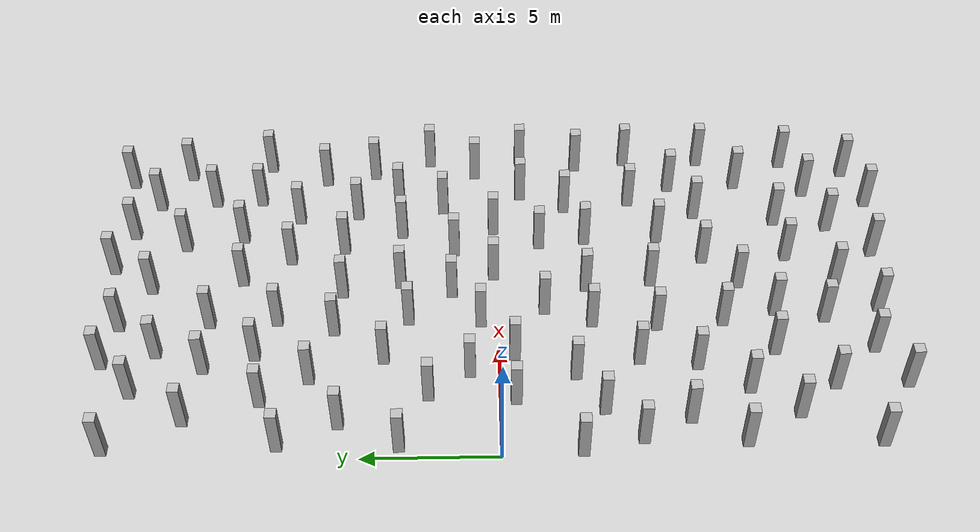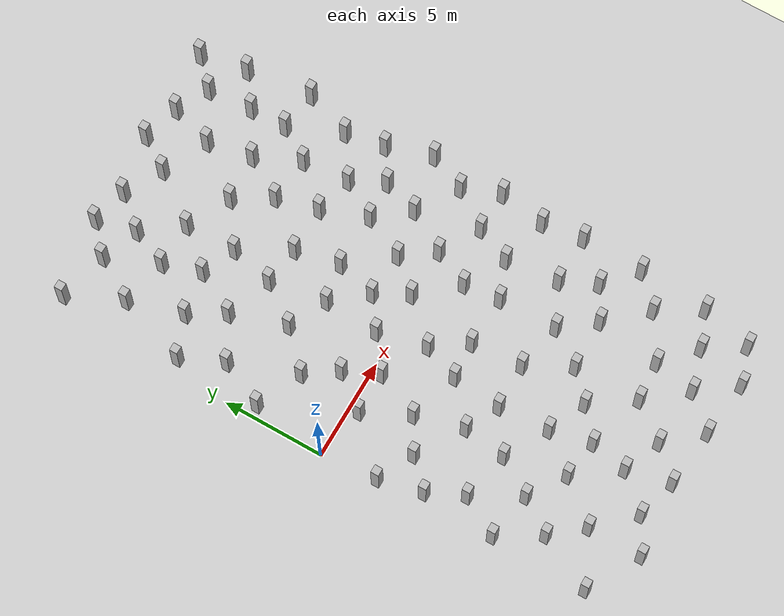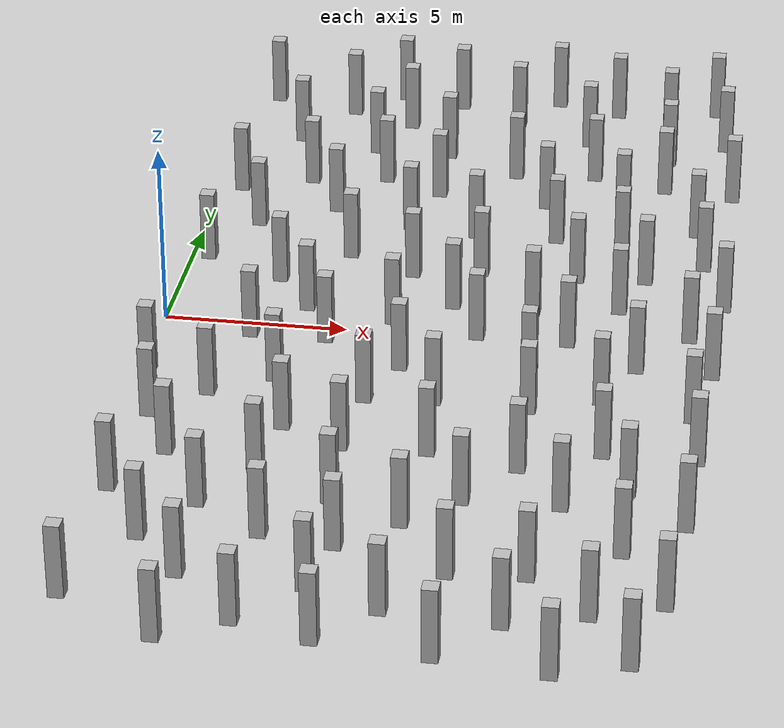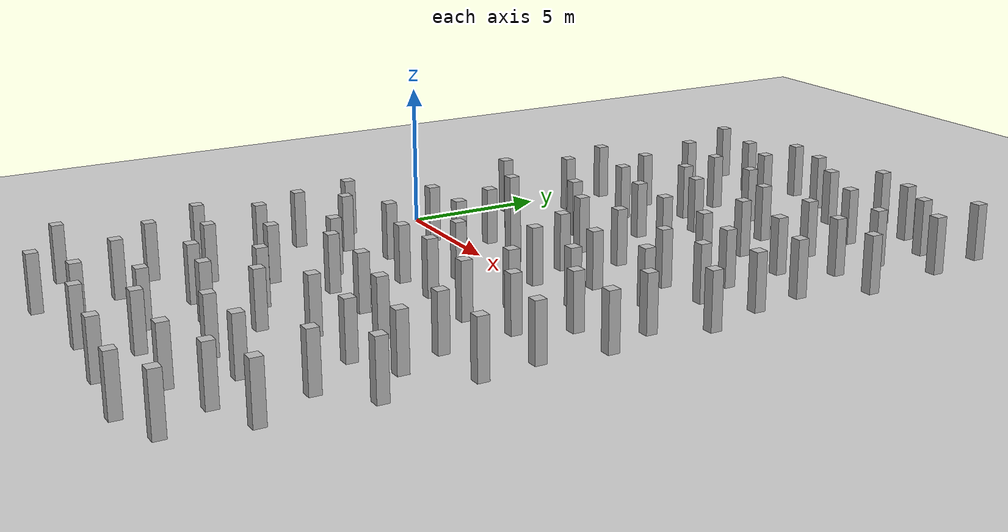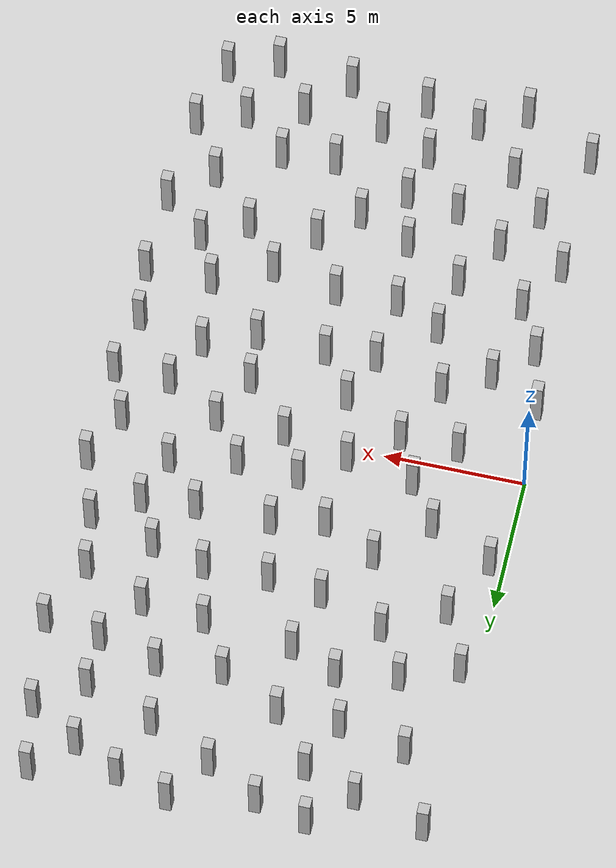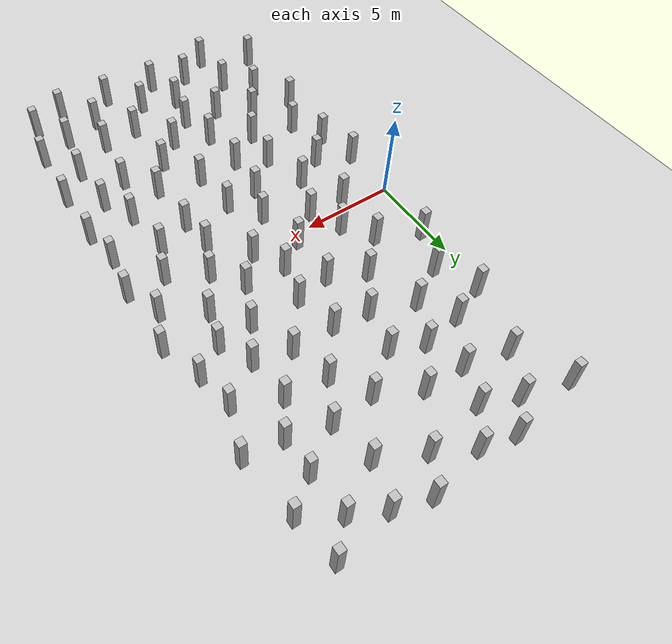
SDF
<sdf version="1.6">
 <world name="randomized_boxes_30m_200_min1_8_max2_5">
  <include><uri>model://sun</uri></include>
  <include><uri>model://ground_plane</uri></include>
  <model name="box_25">
   <static>true</static>
   <pose>0.470 3.601 1.000 0 0 0</pose>
   <link name="link">
    <visual name="visual"><geometry><box><size>0.4 0.4 2.0</size></box></geometry></visual>
    <collision name="collision"><geometry><box><size>0.4 0.4 2.0</size></box></geometry></collision>
   </link>
  </model>
  <model name="box_33">
   <static>true</static>
   <pose>1.731 11.325 1.000 0 0 0</pose>
   <link name="link">
    <visual name="visual"><geometry><box><size>0.4 0.4 2.0</size></box></geometry></visual>
    <collision name="collision"><geometry><box><size>0.4 0.4 2.0</size></box></geometry></collision>
   </link>
  </model>
  <model name="box_39">
   <static>true</static>
   <pose>1.485 5.790 1.000 0 0 0</pose>
   <link name="link">
    <visual name="visual"><geometry><box><size>0.4 0.4 2.0</size></box></geometry></visual>
    <collision name="collision"><geometry><box><size>0.4 0.4 2.0</size></box></geometry></collision>
   </link>
  </model>
  <model name="box_40">
   <static>true</static>
   <pose>0.565 7.878 1.000 0 0 0</pose>
   <link name="link">
    <visual name="visual"><geometry><box><size>0.4 0.4 2.0</size></box></geometry></visual>
    <collision name="collision"><geometry><box><size>0.4 0.4 2.0</size></box></geometry></collision>
   </link>
  </model>
  <model name="box_46">
   <static>true</static>
   <pose>2.522 8.651 1.000 0 0 0</pose>
   <link name="link">
    <visual name="visual"><geometry><box><size>0.4 0.4 2.0</size></box></geometry></visual>
    <collision name="collision"><geometry><box><size>0.4 0.4 2.0</size></box></geometry></collision>
   </link>
  </model>
  <model name="box_47">
   <static>true</static>
   <pose>0.513 13.977 1.000 0 0 0</pose>
   <link name="link">
    <visual name="visual"><geometry><box><size>0.4 0.4 2.0</size></box></geometry></visual>
    <collision name="collision"><geometry><box><size>0.4 0.4 2.0</size></box></geometry></collision>
   </link>
  </model>
  <model name="box_48">
   <static>true</static>
   <pose>2.705 2.603 1.000 0 0 0</pose>
   <link name="link">
    <visual name="visual"><geometry><box><size>0.4 0.4 2.0</size></box></geometry></visual>
    <collision name="collision"><geometry><box><size>0.4 0.4 2.0</size></box></geometry></collision>
   </link>
  </model>
  <model name="box_53">
   <static>true</static>
   <pose>4.412 4.264 1.000 0 0 0</pose>
   <link name="link">
    <visual name="visual"><geometry><box><size>0.4 0.4 2.0</size></box></geometry></visual>
    <collision name="collision"><geometry><box><size>0.4 0.4 2.0</size></box></geometry></collision>
   </link>
  </model>
  <model name="box_58">
   <static>true</static>
   <pose>2.987 13.372 1.000 0 0 0</pose>
   <link name="link">
    <visual name="visual"><geometry><box><size>0.4 0.4 2.0</size></box></geometry></visual>
    <collision name="collision"><geometry><box><size>0.4 0.4 2.0</size></box></geometry></collision>
   </link>
  </model>
  <model name="box_60">
   <static>true</static>
   <pose>3.736 1.093 1.000 0 0 0</pose>
   <link name="link">
    <visual name="visual"><geometry><box><size>0.4 0.4 2.0</size></box></geometry></visual>
    <collision name="collision"><geometry><box><size>0.4 0.4 2.0</size></box></geometry></collision>
   </link>
  </model>
  <model name="box_61">
   <static>true</static>
   <pose>4.377 14.622 1.000 0 0 0</pose>
   <link name="link">
    <visual name="visual"><geometry><box><size>0.4 0.4 2.0</size></box></geometry></visual>
    <collision name="collision"><geometry><box><size>0.4 0.4 2.0</size></box></geometry></collision>
   </link>
  </model>
  <model name="box_62">
   <static>true</static>
   <pose>2.478 -0.559 1.000 0 0 0</pose>
   <link name="link">
    <visual name="visual"><geometry><box><size>0.4 0.4 2.0</size></box></geometry></visual>
    <collision name="collision"><geometry><box><size>0.4 0.4 2.0</size></box></geometry></collision>
   </link>
  </model>
  <model name="box_63">
   <static>true</static>
   <pose>5.805 6.151 1.000 0 0 0</pose>
   <link name="link">
    <visual name="visual"><geometry><box><size>0.4 0.4 2.0</size></box></geometry></visual>
    <collision name="collision"><geometry><box><size>0.4 0.4 2.0</size></box></geometry></collision>
   </link>
  </model>
  <model name="box_65">
   <static>true</static>
   <pose>6.325 8.312 1.000 0 0 0</pose>
   <link name="link">
    <visual name="visual"><geometry><box><size>0.4 0.4 2.0</size></box></geometry></visual>
    <collision name="collision"><geometry><box><size>0.4 0.4 2.0</size></box></geometry></collision>
   </link>
  </model>
  <model name="box_66">
   <static>true</static>
   <pose>3.560 -2.773 1.000 0 0 0</pose>
   <link name="link">
    <visual name="visual"><geometry><box><size>0.4 0.4 2.0</size></box></geometry></visual>
    <collision name="collision"><geometry><box><size>0.4 0.4 2.0</size></box></geometry></collision>
   </link>
  </model>
  <model name="box_67">
   <static>true</static>
   <pose>7.713 5.926 1.000 0 0 0</pose>
   <link name="link">
    <visual name="visual"><geometry><box><size>0.4 0.4 2.0</size></box></geometry></visual>
    <collision name="collision"><geometry><box><size>0.4 0.4 2.0</size></box></geometry></collision>
   </link>
  </model>
  <model name="box_69">
   <static>true</static>
   <pose>10.002 5.960 1.000 0 0 0</pose>
   <link name="link">
    <visual name="visual"><geometry><box><size>0.4 0.4 2.0</size></box></geometry></visual>
    <collision name="collision"><geometry><box><size>0.4 0.4 2.0</size></box></geometry></collision>
   </link>
  </model>
  <model name="box_71">
   <static>true</static>
   <pose>8.163 3.728 1.000 0 0 0</pose>
   <link name="link">
    <visual name="visual"><geometry><box><size>0.4 0.4 2.0</size></box></geometry></visual>
    <collision name="collision"><geometry><box><size>0.4 0.4 2.0</size></box></geometry></collision>
   </link>
  </model>
  <model name="box_74">
   <static>true</static>
   <pose>4.529 -0.559 1.000 0 0 0</pose>
   <link name="link">
    <visual name="visual"><geometry><box><size>0.4 0.4 2.0</size></box></geometry></visual>
    <collision name="collision"><geometry><box><size>0.4 0.4 2.0</size></box></geometry></collision>
   </link>
  </model>
  <model name="box_77">
   <static>true</static>
   <pose>4.078 10.863 1.000 0 0 0</pose>
   <link name="link">
    <visual name="visual"><geometry><box><size>0.4 0.4 2.0</size></box></geometry></visual>
    <collision name="collision"><geometry><box><size>0.4 0.4 2.0</size></box></geometry></collision>
   </link>
  </model>
  <model name="box_78">
   <static>true</static>
   <pose>6.155 0.674 1.000 0 0 0</pose>
   <link name="link">
    <visual name="visual"><geometry><box><size>0.4 0.4 2.0</size></box></geometry></visual>
    <collision name="collision"><geometry><box><size>0.4 0.4 2.0</size></box></geometry></collision>
   </link>
  </model>
  <model name="box_79">
   <static>true</static>
   <pose>9.480 8.012 1.000 0 0 0</pose>
   <link name="link">
    <visual name="visual"><geometry><box><size>0.4 0.4 2.0</size></box></geometry></visual>
    <collision name="collision"><geometry><box><size>0.4 0.4 2.0</size></box></geometry></collision>
   </link>
  </model>
  <model name="box_80">
   <static>true</static>
   <pose>8.386 9.788 1.000 0 0 0</pose>
   <link name="link">
    <visual name="visual"><geometry><box><size>0.4 0.4 2.0</size></box></geometry></visual>
    <collision name="collision"><geometry><box><size>0.4 0.4 2.0</size></box></geometry></collision>
   </link>
  </model>
  <model name="box_84">
   <static>true</static>
   <pose>8.515 0.168 1.000 0 0 0</pose>
   <link name="link">
    <visual name="visual"><geometry><box><size>0.4 0.4 2.0</size></box></geometry></visual>
    <collision name="collision"><geometry><box><size>0.4 0.4 2.0</size></box></geometry></collision>
   </link>
  </model>
  <model name="box_86">
   <static>true</static>
   <pose>10.685 9.981 1.000 0 0 0</pose>
   <link name="link">
    <visual name="visual"><geometry><box><size>0.4 0.4 2.0</size></box></geometry></visual>
    <collision name="collision"><geometry><box><size>0.4 0.4 2.0</size></box></geometry></collision>
   </link>
  </model>
  <model name="box_88">
   <static>true</static>
   <pose>4.219 -5.131 1.000 0 0 0</pose>
   <link name="link">
    <visual name="visual"><geometry><box><size>0.4 0.4 2.0</size></box></geometry></visual>
    <collision name="collision"><geometry><box><size>0.4 0.4 2.0</size></box></geometry></collision>
   </link>
  </model>
  <model name="box_89">
   <static>true</static>
   <pose>6.717 -1.729 1.000 0 0 0</pose>
   <link name="link">
    <visual name="visual"><geometry><box><size>0.4 0.4 2.0</size></box></geometry></visual>
    <collision name="collision"><geometry><box><size>0.4 0.4 2.0</size></box></geometry></collision>
   </link>
  </model>
  <model name="box_90">
   <static>true</static>
   <pose>11.701 7.825 1.000 0 0 0</pose>
   <link name="link">
    <visual name="visual"><geometry><box><size>0.4 0.4 2.0</size></box></geometry></visual>
    <collision name="collision"><geometry><box><size>0.4 0.4 2.0</size></box></geometry></collision>
   </link>
  </model>
  <model name="box_94">
   <static>true</static>
   <pose>5.847 -5.914 1.000 0 0 0</pose>
   <link name="link">
    <visual name="visual"><geometry><box><size>0.4 0.4 2.0</size></box></geometry></visual>
    <collision name="collision"><geometry><box><size>0.4 0.4 2.0</size></box></geometry></collision>
   </link>
  </model>
  <model name="box_98">
   <static>true</static>
   <pose>3.529 6.953 1.000 0 0 0</pose>
   <link name="link">
    <visual name="visual"><geometry><box><size>0.4 0.4 2.0</size></box></geometry></visual>
    <collision name="collision"><geometry><box><size>0.4 0.4 2.0</size></box></geometry></collision>
   </link>
  </model>
  <model name="box_99">
   <static>true</static>
   <pose>7.863 -3.360 1.000 0 0 0</pose>
   <link name="link">
    <visual name="visual"><geometry><box><size>0.4 0.4 2.0</size></box></geometry></visual>
    <collision name="collision"><geometry><box><size>0.4 0.4 2.0</size></box></geometry></collision>
   </link>
  </model>
  <model name="box_103">
   <static>true</static>
   <pose>10.281 12.194 1.000 0 0 0</pose>
   <link name="link">
    <visual name="visual"><geometry><box><size>0.4 0.4 2.0</size></box></geometry></visual>
    <collision name="collision"><geometry><box><size>0.4 0.4 2.0</size></box></geometry></collision>
   </link>
  </model>
  <model name="box_104">
   <static>true</static>
   <pose>6.256 10.837 1.000 0 0 0</pose>
   <link name="link">
    <visual name="visual"><geometry><box><size>0.4 0.4 2.0</size></box></geometry></visual>
    <collision name="collision"><geometry><box><size>0.4 0.4 2.0</size></box></geometry></collision>
   </link>
  </model>
  <model name="box_105">
   <static>true</static>
   <pose>10.347 -3.439 1.000 0 0 0</pose>
   <link name="link">
    <visual name="visual"><geometry><box><size>0.4 0.4 2.0</size></box></geometry></visual>
    <collision name="collision"><geometry><box><size>0.4 0.4 2.0</size></box></geometry></collision>
   </link>
  </model>
  <model name="box_106">
   <static>true</static>
   <pose>12.748 11.277 1.000 0 0 0</pose>
   <link name="link">
    <visual name="visual"><geometry><box><size>0.4 0.4 2.0</size></box></geometry></visual>
    <collision name="collision"><geometry><box><size>0.4 0.4 2.0</size></box></geometry></collision>
   </link>
  </model>
  <model name="box_107">
   <static>true</static>
   <pose>11.898 5.519 1.000 0 0 0</pose>
   <link name="link">
    <visual name="visual"><geometry><box><size>0.4 0.4 2.0</size></box></geometry></visual>
    <collision name="collision"><geometry><box><size>0.4 0.4 2.0</size></box></geometry></collision>
   </link>
  </model>
  <model name="box_108">
   <static>true</static>
   <pose>9.839 1.668 1.000 0 0 0</pose>
   <link name="link">
    <visual name="visual"><geometry><box><size>0.4 0.4 2.0</size></box></geometry></visual>
    <collision name="collision"><geometry><box><size>0.4 0.4 2.0</size></box></geometry></collision>
   </link>
  </model>
  <model name="box_110">
   <static>true</static>
   <pose>8.072 -5.862 1.000 0 0 0</pose>
   <link name="link">
    <visual name="visual"><geometry><box><size>0.4 0.4 2.0</size></box></geometry></visual>
    <collision name="collision"><geometry><box><size>0.4 0.4 2.0</size></box></geometry></collision>
   </link>
  </model>
  <model name="box_112">
   <static>true</static>
   <pose>12.163 2.119 1.000 0 0 0</pose>
   <link name="link">
    <visual name="visual"><geometry><box><size>0.4 0.4 2.0</size></box></geometry></visual>
    <collision name="collision"><geometry><box><size>0.4 0.4 2.0</size></box></geometry></collision>
   </link>
  </model>
  <model name="box_113">
   <static>true</static>
   <pose>10.432 -6.309 1.000 0 0 0</pose>
   <link name="link">
    <visual name="visual"><geometry><box><size>0.4 0.4 2.0</size></box></geometry></visual>
    <collision name="collision"><geometry><box><size>0.4 0.4 2.0</size></box></geometry></collision>
   </link>
  </model>
  <model name="box_114">
   <static>true</static>
   <pose>6.297 3.379 1.000 0 0 0</pose>
   <link name="link">
    <visual name="visual"><geometry><box><size>0.4 0.4 2.0</size></box></geometry></visual>
    <collision name="collision"><geometry><box><size>0.4 0.4 2.0</size></box></geometry></collision>
   </link>
  </model>
  <model name="box_116">
   <static>true</static>
   <pose>14.252 4.904 1.000 0 0 0</pose>
   <link name="link">
    <visual name="visual"><geometry><box><size>0.4 0.4 2.0</size></box></geometry></visual>
    <collision name="collision"><geometry><box><size>0.4 0.4 2.0</size></box></geometry></collision>
   </link>
  </model>
  <model name="box_117">
   <static>true</static>
   <pose>13.902 6.864 1.000 0 0 0</pose>
   <link name="link">
    <visual name="visual"><geometry><box><size>0.4 0.4 2.0</size></box></geometry></visual>
    <collision name="collision"><geometry><box><size>0.4 0.4 2.0</size></box></geometry></collision>
   </link>
  </model>
  <model name="box_118">
   <static>true</static>
   <pose>12.587 13.499 1.000 0 0 0</pose>
   <link name="link">
    <visual name="visual"><geometry><box><size>0.4 0.4 2.0</size></box></geometry></visual>
    <collision name="collision"><geometry><box><size>0.4 0.4 2.0</size></box></geometry></collision>
   </link>
  </model>
  <model name="box_119">
   <static>true</static>
   <pose>10.965 0.129 1.000 0 0 0</pose>
   <link name="link">
    <visual name="visual"><geometry><box><size>0.4 0.4 2.0</size></box></geometry></visual>
    <collision name="collision"><geometry><box><size>0.4 0.4 2.0</size></box></geometry></collision>
   </link>
  </model>
  <model name="box_121">
   <static>true</static>
   <pose>6.065 -3.499 1.000 0 0 0</pose>
   <link name="link">
    <visual name="visual"><geometry><box><size>0.4 0.4 2.0</size></box></geometry></visual>
    <collision name="collision"><geometry><box><size>0.4 0.4 2.0</size></box></geometry></collision>
   </link>
  </model>
  <model name="box_122">
   <static>true</static>
   <pose>14.756 9.200 1.000 0 0 0</pose>
   <link name="link">
    <visual name="visual"><geometry><box><size>0.4 0.4 2.0</size></box></geometry></visual>
    <collision name="collision"><geometry><box><size>0.4 0.4 2.0</size></box></geometry></collision>
   </link>
  </model>
  <model name="box_124">
   <static>true</static>
   <pose>10.828 3.724 1.000 0 0 0</pose>
   <link name="link">
    <visual name="visual"><geometry><box><size>0.4 0.4 2.0</size></box></geometry></visual>
    <collision name="collision"><geometry><box><size>0.4 0.4 2.0</size></box></geometry></collision>
   </link>
  </model>
  <model name="box_125">
   <static>true</static>
   <pose>14.334 12.447 1.000 0 0 0</pose>
   <link name="link">
    <visual name="visual"><geometry><box><size>0.4 0.4 2.0</size></box></geometry></visual>
    <collision name="collision"><geometry><box><size>0.4 0.4 2.0</size></box></geometry></collision>
   </link>
  </model>
  <model name="box_127">
   <static>true</static>
   <pose>10.150 -1.645 1.000 0 0 0</pose>
   <link name="link">
    <visual name="visual"><geometry><box><size>0.4 0.4 2.0</size></box></geometry></visual>
    <collision name="collision"><geometry><box><size>0.4 0.4 2.0</size></box></geometry></collision>
   </link>
  </model>
  <model name="box_128">
   <static>true</static>
   <pose>0.179 -2.841 1.000 0 0 0</pose>
   <link name="link">
    <visual name="visual"><geometry><box><size>0.4 0.4 2.0</size></box></geometry></visual>
    <collision name="collision"><geometry><box><size>0.4 0.4 2.0</size></box></geometry></collision>
   </link>
  </model>
  <model name="box_130">
   <static>true</static>
   <pose>0.676 -4.992 1.000 0 0 0</pose>
   <link name="link">
    <visual name="visual"><geometry><box><size>0.4 0.4 2.0</size></box></geometry></visual>
    <collision name="collision"><geometry><box><size>0.4 0.4 2.0</size></box></geometry></collision>
   </link>
  </model>
  <model name="box_131">
   <static>true</static>
   <pose>13.909 14.765 1.000 0 0 0</pose>
   <link name="link">
    <visual name="visual"><geometry><box><size>0.4 0.4 2.0</size></box></geometry></visual>
    <collision name="collision"><geometry><box><size>0.4 0.4 2.0</size></box></geometry></collision>
   </link>
  </model>
  <model name="box_133">
   <static>true</static>
   <pose>4.665 9.019 1.000 0 0 0</pose>
   <link name="link">
    <visual name="visual"><geometry><box><size>0.4 0.4 2.0</size></box></geometry></visual>
    <collision name="collision"><geometry><box><size>0.4 0.4 2.0</size></box></geometry></collision>
   </link>
  </model>
  <model name="box_134">
   <static>true</static>
   <pose>7.650 1.759 1.000 0 0 0</pose>
   <link name="link">
    <visual name="visual"><geometry><box><size>0.4 0.4 2.0</size></box></geometry></visual>
    <collision name="collision"><geometry><box><size>0.4 0.4 2.0</size></box></geometry></collision>
   </link>
  </model>
  <model name="box_135">
   <static>true</static>
   <pose>6.185 14.232 1.000 0 0 0</pose>
   <link name="link">
    <visual name="visual"><geometry><box><size>0.4 0.4 2.0</size></box></geometry></visual>
    <collision name="collision"><geometry><box><size>0.4 0.4 2.0</size></box></geometry></collision>
   </link>
  </model>
  <model name="box_136">
   <static>true</static>
   <pose>1.514 -6.744 1.000 0 0 0</pose>
   <link name="link">
    <visual name="visual"><geometry><box><size>0.4 0.4 2.0</size></box></geometry></visual>
    <collision name="collision"><geometry><box><size>0.4 0.4 2.0</size></box></geometry></collision>
   </link>
  </model>
  <model name="box_138">
   <static>true</static>
   <pose>14.179 0.833 1.000 0 0 0</pose>
   <link name="link">
    <visual name="visual"><geometry><box><size>0.4 0.4 2.0</size></box></geometry></visual>
    <collision name="collision"><geometry><box><size>0.4 0.4 2.0</size></box></geometry></collision>
   </link>
  </model>
  <model name="box_139">
   <static>true</static>
   <pose>14.916 -1.014 1.000 0 0 0</pose>
   <link name="link">
    <visual name="visual"><geometry><box><size>0.4 0.4 2.0</size></box></geometry></visual>
    <collision name="collision"><geometry><box><size>0.4 0.4 2.0</size></box></geometry></collision>
   </link>
  </model>
  <model name="box_140">
   <static>true</static>
   <pose>9.239 -7.988 1.000 0 0 0</pose>
   <link name="link">
    <visual name="visual"><geometry><box><size>0.4 0.4 2.0</size></box></geometry></visual>
    <collision name="collision"><geometry><box><size>0.4 0.4 2.0</size></box></geometry></collision>
   </link>
  </model>
  <model name="box_141">
   <static>true</static>
   <pose>10.964 14.301 1.000 0 0 0</pose>
   <link name="link">
    <visual name="visual"><geometry><box><size>0.4 0.4 2.0</size></box></geometry></visual>
    <collision name="collision"><geometry><box><size>0.4 0.4 2.0</size></box></geometry></collision>
   </link>
  </model>
  <model name="box_143">
   <static>true</static>
   <pose>7.911 -9.215 1.000 0 0 0</pose>
   <link name="link">
    <visual name="visual"><geometry><box><size>0.4 0.4 2.0</size></box></geometry></visual>
    <collision name="collision"><geometry><box><size>0.4 0.4 2.0</size></box></geometry></collision>
   </link>
  </model>
  <model name="box_144">
   <static>true</static>
   <pose>8.038 13.242 1.000 0 0 0</pose>
   <link name="link">
    <visual name="visual"><geometry><box><size>0.4 0.4 2.0</size></box></geometry></visual>
    <collision name="collision"><geometry><box><size>0.4 0.4 2.0</size></box></geometry></collision>
   </link>
  </model>
  <model name="box_145">
   <static>true</static>
   <pose>9.322 -11.256 1.000 0 0 0</pose>
   <link name="link">
    <visual name="visual"><geometry><box><size>0.4 0.4 2.0</size></box></geometry></visual>
    <collision name="collision"><geometry><box><size>0.4 0.4 2.0</size></box></geometry></collision>
   </link>
  </model>
  <model name="box_146">
   <static>true</static>
   <pose>0.465 -8.620 1.000 0 0 0</pose>
   <link name="link">
    <visual name="visual"><geometry><box><size>0.4 0.4 2.0</size></box></geometry></visual>
    <collision name="collision"><geometry><box><size>0.4 0.4 2.0</size></box></geometry></collision>
   </link>
  </model>
  <model name="box_148">
   <static>true</static>
   <pose>1.680 -10.663 1.000 0 0 0</pose>
   <link name="link">
    <visual name="visual"><geometry><box><size>0.4 0.4 2.0</size></box></geometry></visual>
    <collision name="collision"><geometry><box><size>0.4 0.4 2.0</size></box></geometry></collision>
   </link>
  </model>
  <model name="box_151">
   <static>true</static>
   <pose>12.909 -0.978 1.000 0 0 0</pose>
   <link name="link">
    <visual name="visual"><geometry><box><size>0.4 0.4 2.0</size></box></geometry></visual>
    <collision name="collision"><geometry><box><size>0.4 0.4 2.0</size></box></geometry></collision>
   </link>
  </model>
  <model name="box_152">
   <static>true</static>
   <pose>14.572 -3.289 1.000 0 0 0</pose>
   <link name="link">
    <visual name="visual"><geometry><box><size>0.4 0.4 2.0</size></box></geometry></visual>
    <collision name="collision"><geometry><box><size>0.4 0.4 2.0</size></box></geometry></collision>
   </link>
  </model>
  <model name="box_153">
   <static>true</static>
   <pose>2.953 -12.136 1.000 0 0 0</pose>
   <link name="link">
    <visual name="visual"><geometry><box><size>0.4 0.4 2.0</size></box></geometry></visual>
    <collision name="collision"><geometry><box><size>0.4 0.4 2.0</size></box></geometry></collision>
   </link>
  </model>
  <model name="box_155">
   <static>true</static>
   <pose>7.990 -12.980 1.000 0 0 0</pose>
   <link name="link">
    <visual name="visual"><geometry><box><size>0.4 0.4 2.0</size></box></geometry></visual>
    <collision name="collision"><geometry><box><size>0.4 0.4 2.0</size></box></geometry></collision>
   </link>
  </model>
  <model name="box_156">
   <static>true</static>
   <pose>4.634 -13.882 1.000 0 0 0</pose>
   <link name="link">
    <visual name="visual"><geometry><box><size>0.4 0.4 2.0</size></box></geometry></visual>
    <collision name="collision"><geometry><box><size>0.4 0.4 2.0</size></box></geometry></collision>
   </link>
  </model>
  <model name="box_157">
   <static>true</static>
   <pose>2.808 -9.018 1.000 0 0 0</pose>
   <link name="link">
    <visual name="visual"><geometry><box><size>0.4 0.4 2.0</size></box></geometry></visual>
    <collision name="collision"><geometry><box><size>0.4 0.4 2.0</size></box></geometry></collision>
   </link>
  </model>
  <model name="box_158">
   <static>true</static>
   <pose>11.700 -7.915 1.000 0 0 0</pose>
   <link name="link">
    <visual name="visual"><geometry><box><size>0.4 0.4 2.0</size></box></geometry></visual>
    <collision name="collision"><geometry><box><size>0.4 0.4 2.0</size></box></geometry></collision>
   </link>
  </model>
  <model name="box_159">
   <static>true</static>
   <pose>6.026 -8.411 1.000 0 0 0</pose>
   <link name="link">
    <visual name="visual"><geometry><box><size>0.4 0.4 2.0</size></box></geometry></visual>
    <collision name="collision"><geometry><box><size>0.4 0.4 2.0</size></box></geometry></collision>
   </link>
  </model>
  <model name="box_161">
   <static>true</static>
   <pose>11.255 -11.084 1.000 0 0 0</pose>
   <link name="link">
    <visual name="visual"><geometry><box><size>0.4 0.4 2.0</size></box></geometry></visual>
    <collision name="collision"><geometry><box><size>0.4 0.4 2.0</size></box></geometry></collision>
   </link>
  </model>
  <model name="box_162">
   <static>true</static>
   <pose>10.901 -13.125 1.000 0 0 0</pose>
   <link name="link">
    <visual name="visual"><geometry><box><size>0.4 0.4 2.0</size></box></geometry></visual>
    <collision name="collision"><geometry><box><size>0.4 0.4 2.0</size></box></geometry></collision>
   </link>
  </model>
  <model name="box_163">
   <static>true</static>
   <pose>12.886 -12.502 1.000 0 0 0</pose>
   <link name="link">
    <visual name="visual"><geometry><box><size>0.4 0.4 2.0</size></box></geometry></visual>
    <collision name="collision"><geometry><box><size>0.4 0.4 2.0</size></box></geometry></collision>
   </link>
  </model>
  <model name="box_164">
   <static>true</static>
   <pose>13.270 -7.031 1.000 0 0 0</pose>
   <link name="link">
    <visual name="visual"><geometry><box><size>0.4 0.4 2.0</size></box></geometry></visual>
    <collision name="collision"><geometry><box><size>0.4 0.4 2.0</size></box></geometry></collision>
   </link>
  </model>
  <model name="box_165">
   <static>true</static>
   <pose>12.247 -14.931 1.000 0 0 0</pose>
   <link name="link">
    <visual name="visual"><geometry><box><size>0.4 0.4 2.0</size></box></geometry></visual>
    <collision name="collision"><geometry><box><size>0.4 0.4 2.0</size></box></geometry></collision>
   </link>
  </model>
  <model name="box_166">
   <static>true</static>
   <pose>13.391 -9.755 1.000 0 0 0</pose>
   <link name="link">
    <visual name="visual"><geometry><box><size>0.4 0.4 2.0</size></box></geometry></visual>
    <collision name="collision"><geometry><box><size>0.4 0.4 2.0</size></box></geometry></collision>
   </link>
  </model>
  <model name="box_167">
   <static>true</static>
   <pose>0.389 -13.374 1.000 0 0 0</pose>
   <link name="link">
    <visual name="visual"><geometry><box><size>0.4 0.4 2.0</size></box></geometry></visual>
    <collision name="collision"><geometry><box><size>0.4 0.4 2.0</size></box></geometry></collision>
   </link>
  </model>
  <model name="box_168">
   <static>true</static>
   <pose>9.482 -14.660 1.000 0 0 0</pose>
   <link name="link">
    <visual name="visual"><geometry><box><size>0.4 0.4 2.0</size></box></geometry></visual>
    <collision name="collision"><geometry><box><size>0.4 0.4 2.0</size></box></geometry></collision>
   </link>
  </model>
  <model name="box_171">
   <static>true</static>
   <pose>12.464 -5.330 1.000 0 0 0</pose>
   <link name="link">
    <visual name="visual"><geometry><box><size>0.4 0.4 2.0</size></box></geometry></visual>
    <collision name="collision"><geometry><box><size>0.4 0.4 2.0</size></box></geometry></collision>
   </link>
  </model>
  <model name="box_172">
   <static>true</static>
   <pose>14.617 -11.814 1.000 0 0 0</pose>
   <link name="link">
    <visual name="visual"><geometry><box><size>0.4 0.4 2.0</size></box></geometry></visual>
    <collision name="collision"><geometry><box><size>0.4 0.4 2.0</size></box></geometry></collision>
   </link>
  </model>
  <model name="box_173">
   <static>true</static>
   <pose>14.963 2.664 1.000 0 0 0</pose>
   <link name="link">
    <visual name="visual"><geometry><box><size>0.4 0.4 2.0</size></box></geometry></visual>
    <collision name="collision"><geometry><box><size>0.4 0.4 2.0</size></box></geometry></collision>
   </link>
  </model>
  <model name="box_174">
   <static>true</static>
   <pose>6.111 -12.261 1.000 0 0 0</pose>
   <link name="link">
    <visual name="visual"><geometry><box><size>0.4 0.4 2.0</size></box></geometry></visual>
    <collision name="collision"><geometry><box><size>0.4 0.4 2.0</size></box></geometry></collision>
   </link>
  </model>
  <model name="box_176">
   <static>true</static>
   <pose>14.029 -14.303 1.000 0 0 0</pose>
   <link name="link">
    <visual name="visual"><geometry><box><size>0.4 0.4 2.0</size></box></geometry></visual>
    <collision name="collision"><geometry><box><size>0.4 0.4 2.0</size></box></geometry></collision>
   </link>
  </model>
  <model name="box_177">
   <static>true</static>
   <pose>14.862 -5.322 1.000 0 0 0</pose>
   <link name="link">
    <visual name="visual"><geometry><box><size>0.4 0.4 2.0</size></box></geometry></visual>
    <collision name="collision"><geometry><box><size>0.4 0.4 2.0</size></box></geometry></collision>
   </link>
  </model>
  <model name="box_178">
   <static>true</static>
   <pose>4.844 12.680 1.000 0 0 0</pose>
   <link name="link">
    <visual name="visual"><geometry><box><size>0.4 0.4 2.0</size></box></geometry></visual>
    <collision name="collision"><geometry><box><size>0.4 0.4 2.0</size></box></geometry></collision>
   </link>
  </model>
  <model name="box_179">
   <static>true</static>
   <pose>12.158 -2.719 1.000 0 0 0</pose>
   <link name="link">
    <visual name="visual"><geometry><box><size>0.4 0.4 2.0</size></box></geometry></visual>
    <collision name="collision"><geometry><box><size>0.4 0.4 2.0</size></box></geometry></collision>
   </link>
  </model>
  <model name="box_181">
   <static>true</static>
   <pose>14.821 -8.383 1.000 0 0 0</pose>
   <link name="link">
    <visual name="visual"><geometry><box><size>0.4 0.4 2.0</size></box></geometry></visual>
    <collision name="collision"><geometry><box><size>0.4 0.4 2.0</size></box></geometry></collision>
   </link>
  </model>
  <model name="box_182">
   <static>true</static>
   <pose>4.584 -10.173 1.000 0 0 0</pose>
   <link name="link">
    <visual name="visual"><geometry><box><size>0.4 0.4 2.0</size></box></geometry></visual>
    <collision name="collision"><geometry><box><size>0.4 0.4 2.0</size></box></geometry></collision>
   </link>
  </model>
  <model name="box_184">
   <static>true</static>
   <pose>6.625 -14.397 1.000 0 0 0</pose>
   <link name="link">
    <visual name="visual"><geometry><box><size>0.4 0.4 2.0</size></box></geometry></visual>
    <collision name="collision"><geometry><box><size>0.4 0.4 2.0</size></box></geometry></collision>
   </link>
  </model>
  <model name="box_185">
   <static>true</static>
   <pose>2.980 -14.795 1.000 0 0 0</pose>
   <link name="link">
    <visual name="visual"><geometry><box><size>0.4 0.4 2.0</size></box></geometry></visual>
    <collision name="collision"><geometry><box><size>0.4 0.4 2.0</size></box></geometry></collision>
   </link>
  </model>
  <model name="box_186">
   <static>true</static>
   <pose>12.776 9.450 1.000 0 0 0</pose>
   <link name="link">
    <visual name="visual"><geometry><box><size>0.4 0.4 2.0</size></box></geometry></visual>
    <collision name="collision"><geometry><box><size>0.4 0.4 2.0</size></box></geometry></collision>
   </link>
  </model>
  <model name="box_187">
   <static>true</static>
   <pose>1.964 -3.718 1.000 0 0 0</pose>
   <link name="link">
    <visual name="visual"><geometry><box><size>0.4 0.4 2.0</size></box></geometry></visual>
    <collision name="collision"><geometry><box><size>0.4 0.4 2.0</size></box></geometry></collision>
   </link>
  </model>
  <model name="box_188">
   <static>true</static>
   <pose>6.482 -10.427 1.000 0 0 0</pose>
   <link name="link">
    <visual name="visual"><geometry><box><size>0.4 0.4 2.0</size></box></geometry></visual>
    <collision name="collision"><geometry><box><size>0.4 0.4 2.0</size></box></geometry></collision>
   </link>
  </model>
  <model name="box_191">
   <static>true</static>
   <pose>3.926 -7.242 1.000 0 0 0</pose>
   <link name="link">
    <visual name="visual"><geometry><box><size>0.4 0.4 2.0</size></box></geometry></visual>
    <collision name="collision"><geometry><box><size>0.4 0.4 2.0</size></box></geometry></collision>
   </link>
  </model>
  <model name="box_198">
   <static>true</static>
   <pose>12.713 3.893 1.000 0 0 0</pose>
   <link name="link">
    <visual name="visual"><geometry><box><size>0.4 0.4 2.0</size></box></geometry></visual>
    <collision name="collision"><geometry><box><size>0.4 0.4 2.0</size></box></geometry></collision>
   </link>
  </model>
  <model name="box_199">
   <static>true</static>
   <pose>9.112 14.819 1.000 0 0 0</pose>
   <link name="link">
    <visual name="visual"><geometry><box><size>0.4 0.4 2.0</size></box></geometry></visual>
    <collision name="collision"><geometry><box><size>0.4 0.4 2.0</size></box></geometry></collision>
   </link>
  </model>
 </world>
</sdf>
